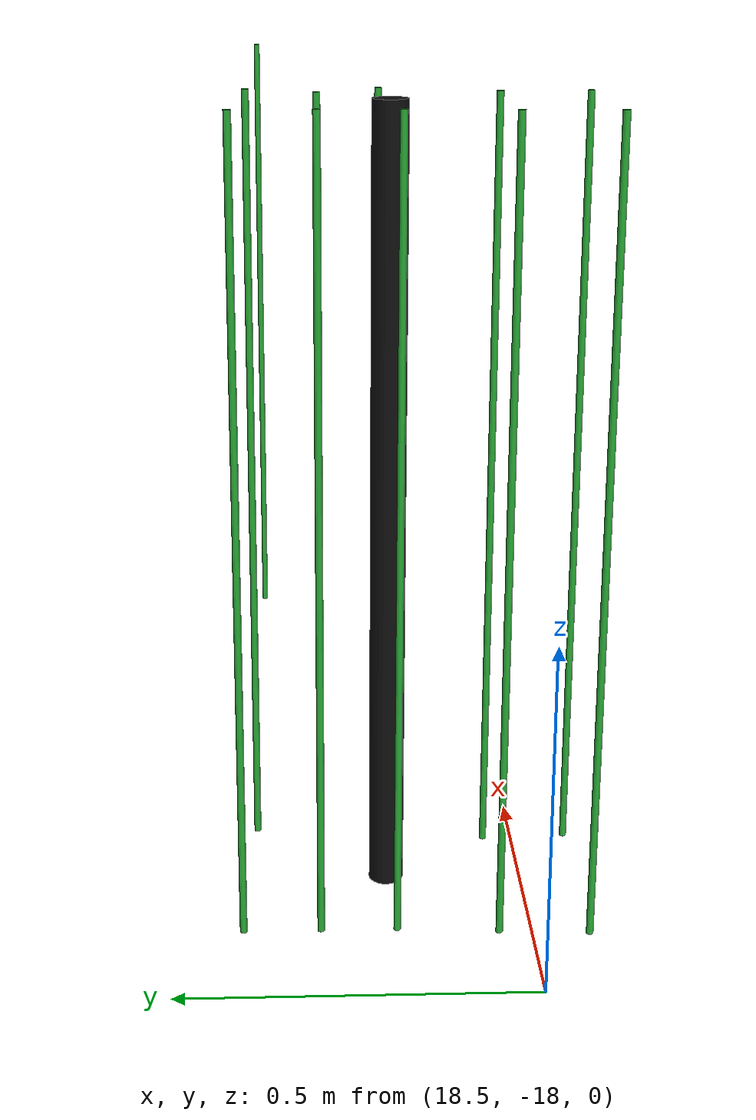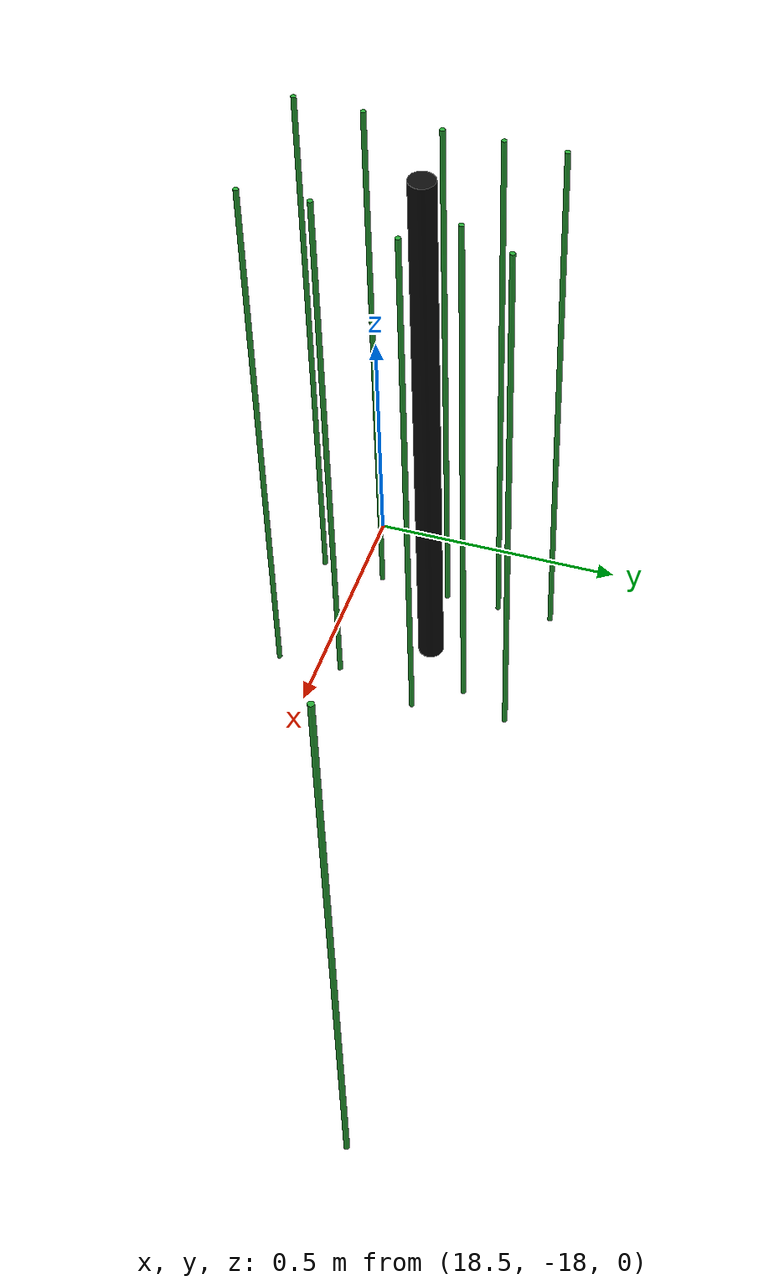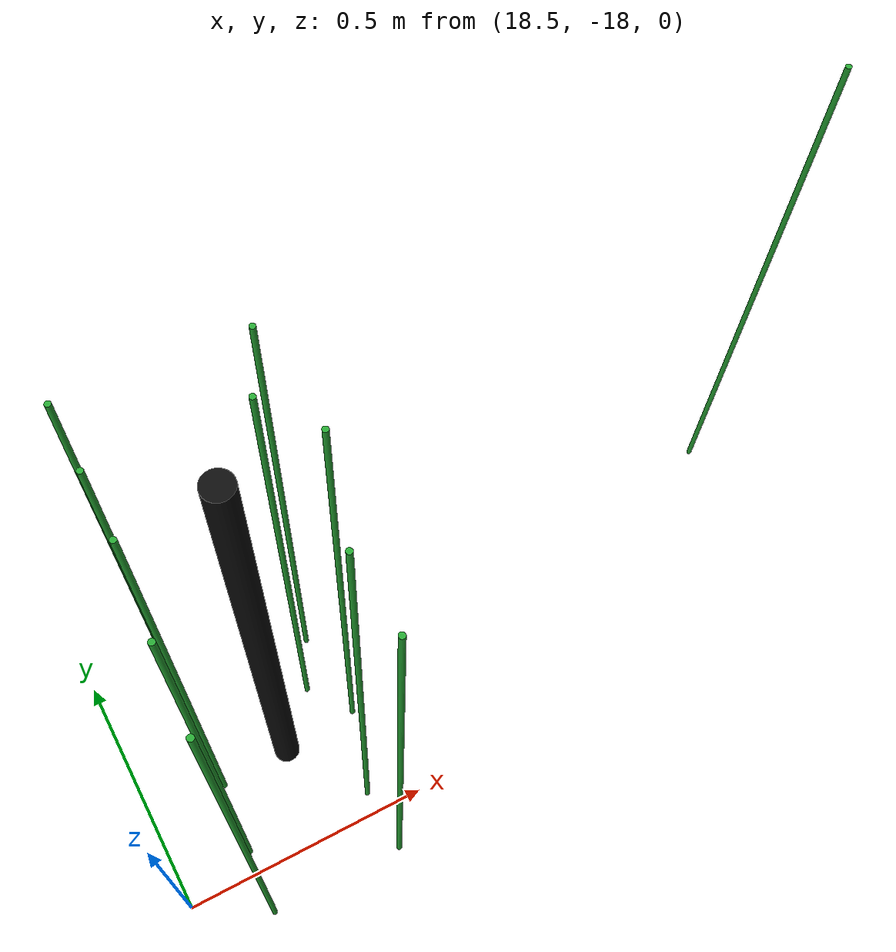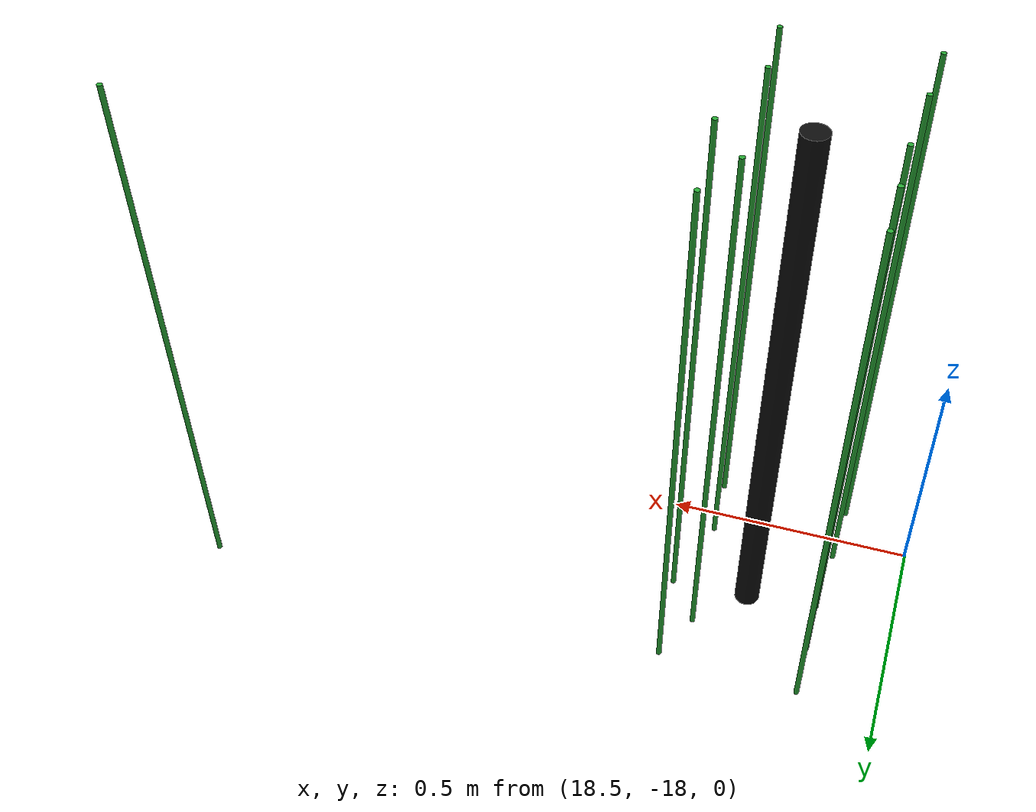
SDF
<sdf version="1.6">
 <world name="default">
  <model name="pole_20">
   <static>1</static>
   <pose>18.8 -17.8 0.575 0 -0 0</pose>
   <link name="link">
    <collision name="collision">
     <geometry><cylinder><length>1.15</length><radius>0.025</radius></cylinder></geometry>
    </collision>
    <visual name="visual">
     <geometry><cylinder><length>1.15</length><radius>0.025</radius></cylinder></geometry>
     <material>
      <script><uri>file://media/materials/scripts/gazebo.material</uri><name>Gazebo/Chrome</name></script>
      <shader type="vertex"><normal_map>__default__</normal_map></shader>
      <emissive>0.1 0.1 0.1 1</emissive>
      <specular>0.01 0.01 0.01 1</specular>
      <ambient>0.5 0.5 0.5 1</ambient>
      <diffuse>0.05 0.05 0.05 1</diffuse>
     </material>
    </visual>
   </link>
  </model>
  <model name="pole_27_clone_clone_16">
   <link name="link">
    <inertial>
     <mass>1</mass>
     <inertia><ixx>1</ixx><ixy>0</ixy><ixz>0</ixz><iyy>1</iyy><iyz>0</iyz><izz>1</izz></inertia>
    </inertial>
    <visual name="visual">
     <geometry><cylinder><length>1.15</length><radius>0.005</radius></cylinder></geometry>
     <material>
      <script><uri>file://media/materials/scripts/gazebo.material</uri><name>Gazebo/Green</name></script>
      <shader type="vertex"><normal_map>__default__</normal_map></shader>
      <emissive>0 0.1 0 1</emissive>
      <specular>0 0.01 0 1</specular>
      <ambient>0 0.5 0 1</ambient>
      <diffuse>0 0.05 0 1</diffuse>
     </material>
    </visual>
    <collision name="collision">
     <geometry><cylinder><radius>0.005</radius><length>1.15</length></cylinder></geometry>
     <surface>
      <friction>
       <ode><mu>1</mu><mu2>1</mu2><fdir1>0 0 0</fdir1><slip1>0</slip1><slip2>0</slip2></ode>
       <torsional>
        <coefficient>1</coefficient>
        <patch_radius>0</patch_radius>
        <surface_radius>0</surface_radius>
        <use_patch_radius>1</use_patch_radius>
        <ode><slip>0</slip></ode>
       </torsional>
      </friction>
      <bounce><restitution_coefficient>0</restitution_coefficient><threshold>1e+06</threshold></bounce>
      <contact>
       <collide_without_contact>0</collide_without_contact>
       <collide_without_contact_bitmask>1</collide_without_contact_bitmask>
       <collide_bitmask>1</collide_bitmask>
       <ode>
        <soft_cfm>0</soft_cfm>
        <soft_erp>0.2</soft_erp>
        <kp>1e+13</kp>
        <kd>1</kd>
        <max_vel>0.01</max_vel>
        <min_depth>0</min_depth>
       </ode>
       <bullet>
        <split_impulse>1</split_impulse>
        <split_impulse_penetration_threshold>-0.01</split_impulse_penetration_threshold>
        <soft_cfm>0</soft_cfm>
        <soft_erp>0.2</soft_erp>
        <kp>1e+13</kp>
        <kd>1</kd>
       </bullet>
      </contact>
     </surface>
    </collision>
   </link>
   <static>1</static>
   <pose>18.6568 -17.8092 0.575 0 -0 0</pose>
  </model>
  <model name="pole_27_clone_clone_17">
   <link name="link">
    <inertial>
     <mass>1</mass>
     <inertia><ixx>1</ixx><ixy>0</ixy><ixz>0</ixz><iyy>1</iyy><iyz>0</iyz><izz>1</izz></inertia>
    </inertial>
    <visual name="visual">
     <geometry><cylinder><length>1.15</length><radius>0.005</radius></cylinder></geometry>
     <material>
      <script><uri>file://media/materials/scripts/gazebo.material</uri><name>Gazebo/Green</name></script>
      <shader type="vertex"><normal_map>__default__</normal_map></shader>
      <emissive>0 0.1 0 1</emissive>
      <specular>0 0.01 0 1</specular>
      <ambient>0 0.5 0 1</ambient>
      <diffuse>0 0.05 0 1</diffuse>
     </material>
    </visual>
    <collision name="collision">
     <geometry><cylinder><radius>0.005</radius><length>1.15</length></cylinder></geometry>
     <surface>
      <friction>
       <ode><mu>1</mu><mu2>1</mu2><fdir1>0 0 0</fdir1><slip1>0</slip1><slip2>0</slip2></ode>
       <torsional>
        <coefficient>1</coefficient>
        <patch_radius>0</patch_radius>
        <surface_radius>0</surface_radius>
        <use_patch_radius>1</use_patch_radius>
        <ode><slip>0</slip></ode>
       </torsional>
      </friction>
      <bounce><restitution_coefficient>0</restitution_coefficient><threshold>1e+06</threshold></bounce>
      <contact>
       <collide_without_contact>0</collide_without_contact>
       <collide_without_contact_bitmask>1</collide_without_contact_bitmask>
       <collide_bitmask>1</collide_bitmask>
       <ode>
        <soft_cfm>0</soft_cfm>
        <soft_erp>0.2</soft_erp>
        <kp>1e+13</kp>
        <kd>1</kd>
        <max_vel>0.01</max_vel>
        <min_depth>0</min_depth>
       </ode>
       <bullet>
        <split_impulse>1</split_impulse>
        <split_impulse_penetration_threshold>-0.01</split_impulse_penetration_threshold>
        <soft_cfm>0</soft_cfm>
        <soft_erp>0.2</soft_erp>
        <kp>1e+13</kp>
        <kd>1</kd>
       </bullet>
      </contact>
     </surface>
    </collision>
   </link>
   <static>1</static>
   <pose>18.6569 -17.7014 0.575 0 -0 0</pose>
  </model>
  <model name="pole_27_clone_clone_18">
   <link name="link">
    <inertial>
     <mass>1</mass>
     <inertia><ixx>1</ixx><ixy>0</ixy><ixz>0</ixz><iyy>1</iyy><iyz>0</iyz><izz>1</izz></inertia>
    </inertial>
    <visual name="visual">
     <geometry><cylinder><length>1.15</length><radius>0.005</radius></cylinder></geometry>
     <material>
      <script><uri>file://media/materials/scripts/gazebo.material</uri><name>Gazebo/Green</name></script>
      <shader type="vertex"><normal_map>__default__</normal_map></shader>
      <emissive>0 0.1 0 1</emissive>
      <specular>0 0.01 0 1</specular>
      <ambient>0 0.5 0 1</ambient>
      <diffuse>0 0.05 0 1</diffuse>
     </material>
    </visual>
    <collision name="collision">
     <geometry><cylinder><radius>0.005</radius><length>1.15</length></cylinder></geometry>
     <surface>
      <friction>
       <ode><mu>1</mu><mu2>1</mu2><fdir1>0 0 0</fdir1><slip1>0</slip1><slip2>0</slip2></ode>
       <torsional>
        <coefficient>1</coefficient>
        <patch_radius>0</patch_radius>
        <surface_radius>0</surface_radius>
        <use_patch_radius>1</use_patch_radius>
        <ode><slip>0</slip></ode>
       </torsional>
      </friction>
      <bounce><restitution_coefficient>0</restitution_coefficient><threshold>1e+06</threshold></bounce>
      <contact>
       <collide_without_contact>0</collide_without_contact>
       <collide_without_contact_bitmask>1</collide_without_contact_bitmask>
       <collide_bitmask>1</collide_bitmask>
       <ode>
        <soft_cfm>0</soft_cfm>
        <soft_erp>0.2</soft_erp>
        <kp>1e+13</kp>
        <kd>1</kd>
        <max_vel>0.01</max_vel>
        <min_depth>0</min_depth>
       </ode>
       <bullet>
        <split_impulse>1</split_impulse>
        <split_impulse_penetration_threshold>-0.01</split_impulse_penetration_threshold>
        <soft_cfm>0</soft_cfm>
        <soft_erp>0.2</soft_erp>
        <kp>1e+13</kp>
        <kd>1</kd>
       </bullet>
      </contact>
     </surface>
    </collision>
   </link>
   <static>1</static>
   <pose>18.6567 -17.5916 0.575 0 -0 0</pose>
  </model>
  <model name="pole_27_clone_clone_19">
   <link name="link">
    <inertial>
     <mass>1</mass>
     <inertia><ixx>1</ixx><ixy>0</ixy><ixz>0</ixz><iyy>1</iyy><iyz>0</iyz><izz>1</izz></inertia>
    </inertial>
    <visual name="visual">
     <geometry><cylinder><length>1.15</length><radius>0.005</radius></cylinder></geometry>
     <material>
      <script><uri>file://media/materials/scripts/gazebo.material</uri><name>Gazebo/Green</name></script>
      <shader type="vertex"><normal_map>__default__</normal_map></shader>
      <emissive>0 0.1 0 1</emissive>
      <specular>0 0.01 0 1</specular>
      <ambient>0 0.5 0 1</ambient>
      <diffuse>0 0.05 0 1</diffuse>
     </material>
    </visual>
    <collision name="collision">
     <geometry><cylinder><radius>0.005</radius><length>1.15</length></cylinder></geometry>
     <surface>
      <friction>
       <ode><mu>1</mu><mu2>1</mu2><fdir1>0 0 0</fdir1><slip1>0</slip1><slip2>0</slip2></ode>
       <torsional>
        <coefficient>1</coefficient>
        <patch_radius>0</patch_radius>
        <surface_radius>0</surface_radius>
        <use_patch_radius>1</use_patch_radius>
        <ode><slip>0</slip></ode>
       </torsional>
      </friction>
      <bounce><restitution_coefficient>0</restitution_coefficient><threshold>1e+06</threshold></bounce>
      <contact>
       <collide_without_contact>0</collide_without_contact>
       <collide_without_contact_bitmask>1</collide_without_contact_bitmask>
       <collide_bitmask>1</collide_bitmask>
       <ode>
        <soft_cfm>0</soft_cfm>
        <soft_erp>0.2</soft_erp>
        <kp>1e+13</kp>
        <kd>1</kd>
        <max_vel>0.01</max_vel>
        <min_depth>0</min_depth>
       </ode>
       <bullet>
        <split_impulse>1</split_impulse>
        <split_impulse_penetration_threshold>-0.01</split_impulse_penetration_threshold>
        <soft_cfm>0</soft_cfm>
        <soft_erp>0.2</soft_erp>
        <kp>1e+13</kp>
        <kd>1</kd>
       </bullet>
      </contact>
     </surface>
    </collision>
   </link>
   <static>1</static>
   <pose>18.646 -17.9533 0.575 0 -0 0</pose>
  </model>
  <model name="pole_27_clone_clone_20">
   <link name="link">
    <inertial>
     <mass>1</mass>
     <inertia><ixx>1</ixx><ixy>0</ixy><ixz>0</ixz><iyy>1</iyy><iyz>0</iyz><izz>1</izz></inertia>
    </inertial>
    <visual name="visual">
     <geometry><cylinder><length>1.15</length><radius>0.005</radius></cylinder></geometry>
     <material>
      <script><uri>file://media/materials/scripts/gazebo.material</uri><name>Gazebo/Green</name></script>
      <shader type="vertex"><normal_map>__default__</normal_map></shader>
      <emissive>0 0.1 0 1</emissive>
      <specular>0 0.01 0 1</specular>
      <ambient>0 0.5 0 1</ambient>
      <diffuse>0 0.05 0 1</diffuse>
     </material>
    </visual>
    <collision name="collision">
     <geometry><cylinder><radius>0.005</radius><length>1.15</length></cylinder></geometry>
     <surface>
      <friction>
       <ode><mu>1</mu><mu2>1</mu2><fdir1>0 0 0</fdir1><slip1>0</slip1><slip2>0</slip2></ode>
       <torsional>
        <coefficient>1</coefficient>
        <patch_radius>0</patch_radius>
        <surface_radius>0</surface_radius>
        <use_patch_radius>1</use_patch_radius>
        <ode><slip>0</slip></ode>
       </torsional>
      </friction>
      <bounce><restitution_coefficient>0</restitution_coefficient><threshold>1e+06</threshold></bounce>
      <contact>
       <collide_without_contact>0</collide_without_contact>
       <collide_without_contact_bitmask>1</collide_without_contact_bitmask>
       <collide_bitmask>1</collide_bitmask>
       <ode>
        <soft_cfm>0</soft_cfm>
        <soft_erp>0.2</soft_erp>
        <kp>1e+13</kp>
        <kd>1</kd>
        <max_vel>0.01</max_vel>
        <min_depth>0</min_depth>
       </ode>
       <bullet>
        <split_impulse>1</split_impulse>
        <split_impulse_penetration_threshold>-0.01</split_impulse_penetration_threshold>
        <soft_cfm>0</soft_cfm>
        <soft_erp>0.2</soft_erp>
        <kp>1e+13</kp>
        <kd>1</kd>
       </bullet>
      </contact>
     </surface>
    </collision>
   </link>
   <static>1</static>
   <pose>18.639 -18.0809 0.575 0 -0 0</pose>
  </model>
  <model name="pole_27_clone_clone_21">
   <link name="link">
    <inertial>
     <mass>1</mass>
     <inertia><ixx>1</ixx><ixy>0</ixy><ixz>0</ixz><iyy>1</iyy><iyz>0</iyz><izz>1</izz></inertia>
    </inertial>
    <visual name="visual">
     <geometry><cylinder><length>1.15</length><radius>0.005</radius></cylinder></geometry>
     <material>
      <script><uri>file://media/materials/scripts/gazebo.material</uri><name>Gazebo/Green</name></script>
      <shader type="vertex"><normal_map>__default__</normal_map></shader>
      <emissive>0 0.1 0 1</emissive>
      <specular>0 0.01 0 1</specular>
      <ambient>0 0.5 0 1</ambient>
      <diffuse>0 0.05 0 1</diffuse>
     </material>
    </visual>
    <collision name="collision">
     <geometry><cylinder><radius>0.005</radius><length>1.15</length></cylinder></geometry>
     <surface>
      <friction>
       <ode><mu>1</mu><mu2>1</mu2><fdir1>0 0 0</fdir1><slip1>0</slip1><slip2>0</slip2></ode>
       <torsional>
        <coefficient>1</coefficient>
        <patch_radius>0</patch_radius>
        <surface_radius>0</surface_radius>
        <use_patch_radius>1</use_patch_radius>
        <ode><slip>0</slip></ode>
       </torsional>
      </friction>
      <bounce><restitution_coefficient>0</restitution_coefficient><threshold>1e+06</threshold></bounce>
      <contact>
       <collide_without_contact>0</collide_without_contact>
       <collide_without_contact_bitmask>1</collide_without_contact_bitmask>
       <collide_bitmask>1</collide_bitmask>
       <ode>
        <soft_cfm>0</soft_cfm>
        <soft_erp>0.2</soft_erp>
        <kp>1e+13</kp>
        <kd>1</kd>
        <max_vel>0.01</max_vel>
        <min_depth>0</min_depth>
       </ode>
       <bullet>
        <split_impulse>1</split_impulse>
        <split_impulse_penetration_threshold>-0.01</split_impulse_penetration_threshold>
        <soft_cfm>0</soft_cfm>
        <soft_erp>0.2</soft_erp>
        <kp>1e+13</kp>
        <kd>1</kd>
       </bullet>
      </contact>
     </surface>
    </collision>
   </link>
   <static>1</static>
   <pose>18.9547 -17.7905 0.575 0 -0 0</pose>
  </model>
  <model name="pole_27_clone_clone_22">
   <link name="link">
    <inertial>
     <mass>1</mass>
     <inertia><ixx>1</ixx><ixy>0</ixy><ixz>0</ixz><iyy>1</iyy><iyz>0</iyz><izz>1</izz></inertia>
    </inertial>
    <visual name="visual">
     <geometry><cylinder><length>1.15</length><radius>0.005</radius></cylinder></geometry>
     <material>
      <script><uri>file://media/materials/scripts/gazebo.material</uri><name>Gazebo/Green</name></script>
      <shader type="vertex"><normal_map>__default__</normal_map></shader>
      <emissive>0 0.1 0 1</emissive>
      <specular>0 0.01 0 1</specular>
      <ambient>0 0.5 0 1</ambient>
      <diffuse>0 0.05 0 1</diffuse>
     </material>
    </visual>
    <collision name="collision">
     <geometry><cylinder><radius>0.005</radius><length>1.15</length></cylinder></geometry>
     <surface>
      <friction>
       <ode><mu>1</mu><mu2>1</mu2><fdir1>0 0 0</fdir1><slip1>0</slip1><slip2>0</slip2></ode>
       <torsional>
        <coefficient>1</coefficient>
        <patch_radius>0</patch_radius>
        <surface_radius>0</surface_radius>
        <use_patch_radius>1</use_patch_radius>
        <ode><slip>0</slip></ode>
       </torsional>
      </friction>
      <bounce><restitution_coefficient>0</restitution_coefficient><threshold>1e+06</threshold></bounce>
      <contact>
       <collide_without_contact>0</collide_without_contact>
       <collide_without_contact_bitmask>1</collide_without_contact_bitmask>
       <collide_bitmask>1</collide_bitmask>
       <ode>
        <soft_cfm>0</soft_cfm>
        <soft_erp>0.2</soft_erp>
        <kp>1e+13</kp>
        <kd>1</kd>
        <max_vel>0.01</max_vel>
        <min_depth>0</min_depth>
       </ode>
       <bullet>
        <split_impulse>1</split_impulse>
        <split_impulse_penetration_threshold>-0.01</split_impulse_penetration_threshold>
        <soft_cfm>0</soft_cfm>
        <soft_erp>0.2</soft_erp>
        <kp>1e+13</kp>
        <kd>1</kd>
       </bullet>
      </contact>
     </surface>
    </collision>
   </link>
   <static>1</static>
   <pose>18.9045 -17.9564 0.575 0 -0 0</pose>
  </model>
  <model name="pole_27_clone_clone_23">
   <link name="link">
    <inertial>
     <mass>1</mass>
     <inertia><ixx>1</ixx><ixy>0</ixy><ixz>0</ixz><iyy>1</iyy><iyz>0</iyz><izz>1</izz></inertia>
    </inertial>
    <visual name="visual">
     <geometry><cylinder><length>1.15</length><radius>0.005</radius></cylinder></geometry>
     <material>
      <script><uri>file://media/materials/scripts/gazebo.material</uri><name>Gazebo/Green</name></script>
      <shader type="vertex"><normal_map>__default__</normal_map></shader>
      <emissive>0 0.1 0 1</emissive>
      <specular>0 0.01 0 1</specular>
      <ambient>0 0.5 0 1</ambient>
      <diffuse>0 0.05 0 1</diffuse>
     </material>
    </visual>
    <collision name="collision">
     <geometry><cylinder><radius>0.005</radius><length>1.15</length></cylinder></geometry>
     <surface>
      <friction>
       <ode><mu>1</mu><mu2>1</mu2><fdir1>0 0 0</fdir1><slip1>0</slip1><slip2>0</slip2></ode>
       <torsional>
        <coefficient>1</coefficient>
        <patch_radius>0</patch_radius>
        <surface_radius>0</surface_radius>
        <use_patch_radius>1</use_patch_radius>
        <ode><slip>0</slip></ode>
       </torsional>
      </friction>
      <bounce><restitution_coefficient>0</restitution_coefficient><threshold>1e+06</threshold></bounce>
      <contact>
       <collide_without_contact>0</collide_without_contact>
       <collide_without_contact_bitmask>1</collide_without_contact_bitmask>
       <collide_bitmask>1</collide_bitmask>
       <ode>
        <soft_cfm>0</soft_cfm>
        <soft_erp>0.2</soft_erp>
        <kp>1e+13</kp>
        <kd>1</kd>
        <max_vel>0.01</max_vel>
        <min_depth>0</min_depth>
       </ode>
       <bullet>
        <split_impulse>1</split_impulse>
        <split_impulse_penetration_threshold>-0.01</split_impulse_penetration_threshold>
        <soft_cfm>0</soft_cfm>
        <soft_erp>0.2</soft_erp>
        <kp>1e+13</kp>
        <kd>1</kd>
       </bullet>
      </contact>
     </surface>
    </collision>
   </link>
   <static>1</static>
   <pose>18.9099 -18.0828 0.575 0 -0 0</pose>
  </model>
  <model name="pole_27_clone_clone_24">
   <link name="link">
    <inertial>
     <mass>1</mass>
     <inertia><ixx>1</ixx><ixy>0</ixy><ixz>0</ixz><iyy>1</iyy><iyz>0</iyz><izz>1</izz></inertia>
    </inertial>
    <visual name="visual">
     <geometry><cylinder><length>1.15</length><radius>0.005</radius></cylinder></geometry>
     <material>
      <script><uri>file://media/materials/scripts/gazebo.material</uri><name>Gazebo/Green</name></script>
      <shader type="vertex"><normal_map>__default__</normal_map></shader>
      <emissive>0 0.1 0 1</emissive>
      <specular>0 0.01 0 1</specular>
      <ambient>0 0.5 0 1</ambient>
      <diffuse>0 0.05 0 1</diffuse>
     </material>
    </visual>
    <collision name="collision">
     <geometry><cylinder><radius>0.005</radius><length>1.15</length></cylinder></geometry>
     <surface>
      <friction>
       <ode><mu>1</mu><mu2>1</mu2><fdir1>0 0 0</fdir1><slip1>0</slip1><slip2>0</slip2></ode>
       <torsional>
        <coefficient>1</coefficient>
        <patch_radius>0</patch_radius>
        <surface_radius>0</surface_radius>
        <use_patch_radius>1</use_patch_radius>
        <ode><slip>0</slip></ode>
       </torsional>
      </friction>
      <bounce><restitution_coefficient>0</restitution_coefficient><threshold>1e+06</threshold></bounce>
      <contact>
       <collide_without_contact>0</collide_without_contact>
       <collide_without_contact_bitmask>1</collide_without_contact_bitmask>
       <collide_bitmask>1</collide_bitmask>
       <ode>
        <soft_cfm>0</soft_cfm>
        <soft_erp>0.2</soft_erp>
        <kp>1e+13</kp>
        <kd>1</kd>
        <max_vel>0.01</max_vel>
        <min_depth>0</min_depth>
       </ode>
       <bullet>
        <split_impulse>1</split_impulse>
        <split_impulse_penetration_threshold>-0.01</split_impulse_penetration_threshold>
        <soft_cfm>0</soft_cfm>
        <soft_erp>0.2</soft_erp>
        <kp>1e+13</kp>
        <kd>1</kd>
       </bullet>
      </contact>
     </surface>
    </collision>
   </link>
   <static>1</static>
   <pose>18.8934 -17.7036 0.575 0 -0 0</pose>
  </model>
  <model name="pole_27_clone_clone_25">
   <link name="link">
    <inertial>
     <mass>1</mass>
     <inertia><ixx>1</ixx><ixy>0</ixy><ixz>0</ixz><iyy>1</iyy><iyz>0</iyz><izz>1</izz></inertia>
    </inertial>
    <visual name="visual">
     <geometry><cylinder><length>1.15</length><radius>0.005</radius></cylinder></geometry>
     <material>
      <script><uri>file://media/materials/scripts/gazebo.material</uri><name>Gazebo/Green</name></script>
      <shader type="vertex"><normal_map>__default__</normal_map></shader>
      <emissive>0 0.1 0 1</emissive>
      <specular>0 0.01 0 1</specular>
      <ambient>0 0.5 0 1</ambient>
      <diffuse>0 0.05 0 1</diffuse>
     </material>
    </visual>
    <collision name="collision">
     <geometry><cylinder><radius>0.005</radius><length>1.15</length></cylinder></geometry>
     <surface>
      <friction>
       <ode><mu>1</mu><mu2>1</mu2><fdir1>0 0 0</fdir1><slip1>0</slip1><slip2>0</slip2></ode>
       <torsional>
        <coefficient>1</coefficient>
        <patch_radius>0</patch_radius>
        <surface_radius>0</surface_radius>
        <use_patch_radius>1</use_patch_radius>
        <ode><slip>0</slip></ode>
       </torsional>
      </friction>
      <bounce><restitution_coefficient>0</restitution_coefficient><threshold>1e+06</threshold></bounce>
      <contact>
       <collide_without_contact>0</collide_without_contact>
       <collide_without_contact_bitmask>1</collide_without_contact_bitmask>
       <collide_bitmask>1</collide_bitmask>
       <ode>
        <soft_cfm>0</soft_cfm>
        <soft_erp>0.2</soft_erp>
        <kp>1e+13</kp>
        <kd>1</kd>
        <max_vel>0.01</max_vel>
        <min_depth>0</min_depth>
       </ode>
       <bullet>
        <split_impulse>1</split_impulse>
        <split_impulse_penetration_threshold>-0.01</split_impulse_penetration_threshold>
        <soft_cfm>0</soft_cfm>
        <soft_erp>0.2</soft_erp>
        <kp>1e+13</kp>
        <kd>1</kd>
       </bullet>
      </contact>
     </surface>
    </collision>
   </link>
   <static>1</static>
   <pose>18.9393 -17.6052 0.575 0 -0 0</pose>
  </model>
  <model name="pole_27_clone_clone_105">
   <link name="link">
    <inertial>
     <mass>1</mass>
     <inertia><ixx>1</ixx><ixy>0</ixy><ixz>0</ixz><iyy>1</iyy><iyz>0</iyz><izz>1</izz></inertia>
    </inertial>
    <visual name="visual">
     <geometry><cylinder><length>1.15</length><radius>0.005</radius></cylinder></geometry>
     <material>
      <script><uri>file://media/materials/scripts/gazebo.material</uri><name>Gazebo/Green</name></script>
      <shader type="vertex"><normal_map>__default__</normal_map></shader>
      <emissive>0 0.1 0 1</emissive>
      <specular>0 0.01 0 1</specular>
      <ambient>0 0.5 0 1</ambient>
      <diffuse>0 0.05 0 1</diffuse>
     </material>
    </visual>
    <collision name="collision">
     <geometry><cylinder><radius>0.005</radius><length>1.15</length></cylinder></geometry>
     <surface>
      <friction>
       <ode><mu>1</mu><mu2>1</mu2><fdir1>0 0 0</fdir1><slip1>0</slip1><slip2>0</slip2></ode>
       <torsional>
        <coefficient>1</coefficient>
        <patch_radius>0</patch_radius>
        <surface_radius>0</surface_radius>
        <use_patch_radius>1</use_patch_radius>
        <ode><slip>0</slip></ode>
       </torsional>
      </friction>
      <bounce><restitution_coefficient>0</restitution_coefficient><threshold>1e+06</threshold></bounce>
      <contact>
       <collide_without_contact>0</collide_without_contact>
       <collide_without_contact_bitmask>1</collide_without_contact_bitmask>
       <collide_bitmask>1</collide_bitmask>
       <ode>
        <soft_cfm>0</soft_cfm>
        <soft_erp>0.2</soft_erp>
        <kp>1e+13</kp>
        <kd>1</kd>
        <max_vel>0.01</max_vel>
        <min_depth>0</min_depth>
       </ode>
       <bullet>
        <split_impulse>1</split_impulse>
        <split_impulse_penetration_threshold>-0.01</split_impulse_penetration_threshold>
        <soft_cfm>0</soft_cfm>
        <soft_erp>0.2</soft_erp>
        <kp>1e+13</kp>
        <kd>1</kd>
       </bullet>
      </contact>
     </surface>
    </collision>
   </link>
   <static>1</static>
   <pose>19.908 -17.5984 0.575 0 -0 0</pose>
  </model>
 </world>
</sdf>
